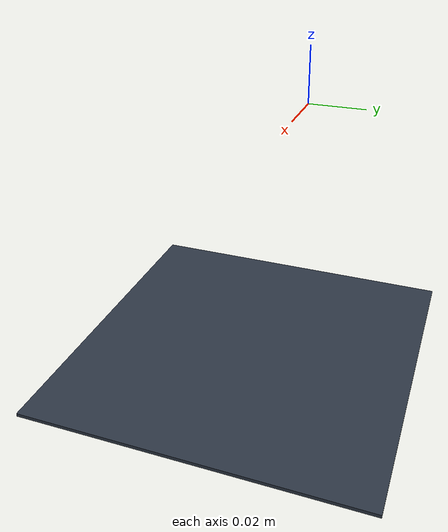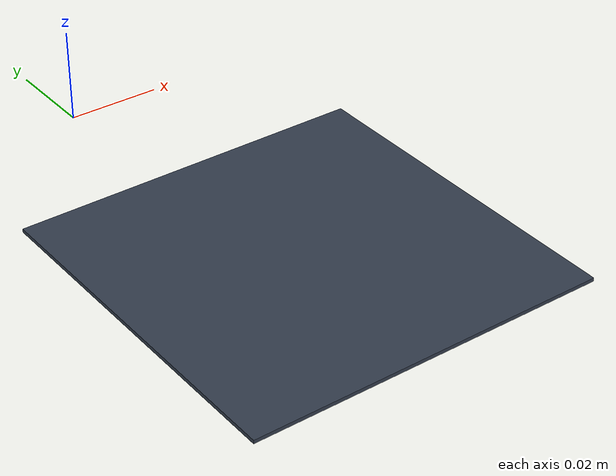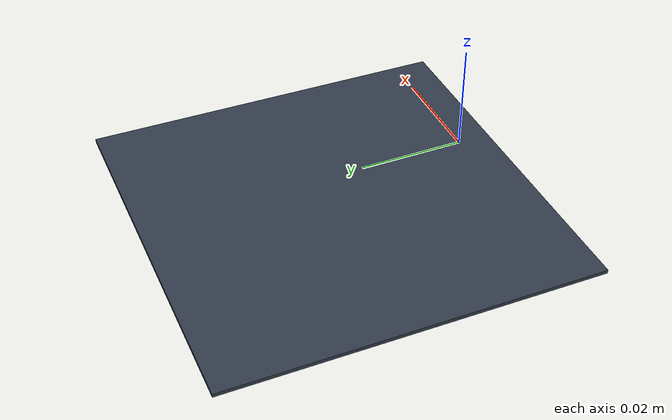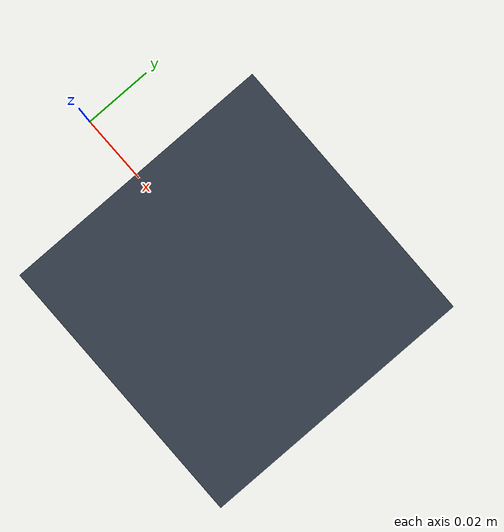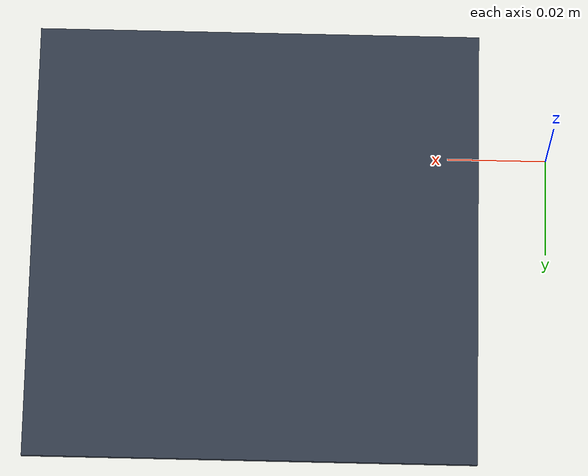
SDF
<?xml version="1.0" ?>
<sdf version="1.8">
  <world name="empty">
    <physics name="1ms" type="ignored">
      <max_step_size>0.001</max_step_size>
      <real_time_factor>1.0</real_time_factor>
    </physics>
    <plugin filename="gz-sim-physics-system"
            name="gz::sim::systems::Physics"/>
    <plugin filename="gz-sim-user-commands-system"
            name="gz::sim::systems::UserCommands"/>
    <plugin filename="gz-sim-scene-broadcaster-system"
            name="gz::sim::systems::SceneBroadcaster"/>

    <light type="directional" name="sun">
      <cast_shadows>false</cast_shadows>
      <pose>0 0 1.5 0 0 0</pose>
      <diffuse>1.0 0.97 0.92 1</diffuse>
      <specular>0.7 0.7 0.7 1</specular>
      <direction>-0.3 0.2 -0.9</direction>
    </light>

    <!-- 10cm reference grid at the working plane, so scale is legible -->
    <model name="scale_reference">
      <static>true</static>
      <pose>0.06 0 -0.06 0 0 0</pose>
      <link name="l">
        <visual name="v">
          <geometry><box><size>0.10 0.10 0.001</size></box></geometry>
          <material>
            <ambient>0.15 0.18 0.22 1</ambient>
            <diffuse>0.2 0.24 0.3 1</diffuse>
          </material>
        </visual>
      </link>
    </model>

    <!-- camera framed on the instrument working volume -->
    <gui fullscreen="0">
      <plugin filename="MinimalScene" name="3D View">
        <gz-gui><title>3D View</title><property key="showTitleBar" type="bool">false</property></gz-gui>
        <engine>ogre2</engine>
        <scene>scene</scene>
        <ambient_light>0.25 0.25 0.28</ambient_light>
        <background_color>0.03 0.02 0.03</background_color>
        <camera_pose>0.18196 -0.20787 0.13823 0.0000 0.4500 2.3000</camera_pose>
        <camera_clip><near>0.002</near><far>200</far></camera_clip>
      </plugin>
      <plugin filename="GzSceneManager" name="Scene Manager"/>
      <plugin filename="InteractiveViewControl" name="Interactive view control">
        <gz-gui><property key="resizable" type="bool">false</property></gz-gui>
      </plugin>
      <plugin filename="CameraTracking" name="Camera tracking">
        <gz-gui><property key="resizable" type="bool">false</property></gz-gui>
      </plugin>
      <plugin filename="EntityTree" name="Entity tree"/>
    </gui>
      <light type="point" name="fill">
      <pose>0.02 -0.08 0.12 0 0 0</pose>
      <diffuse>0.45 0.40 0.38 1</diffuse>
      <specular>0.3 0.3 0.3 1</specular>
      <attenuation><range>1.5</range><linear>0.6</linear></attenuation>
      <cast_shadows>false</cast_shadows>
    </light>
  </world>
</sdf>
